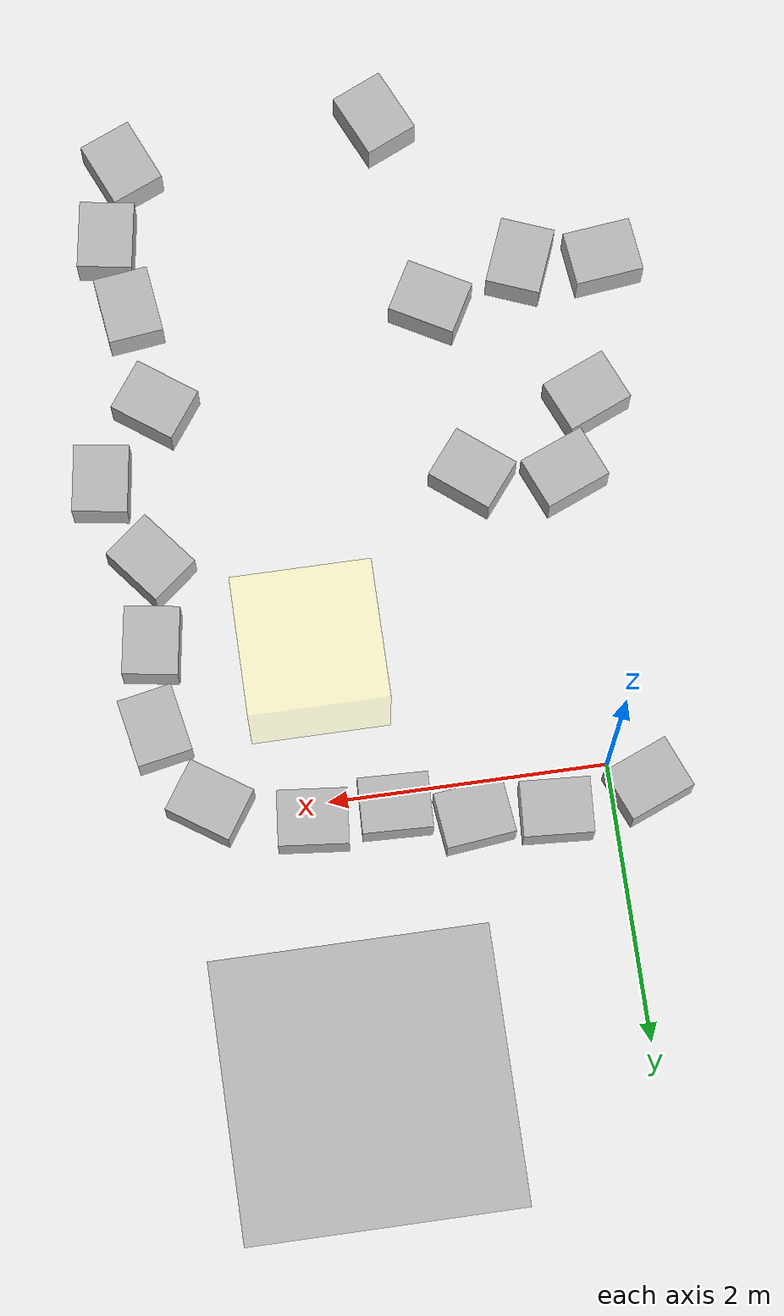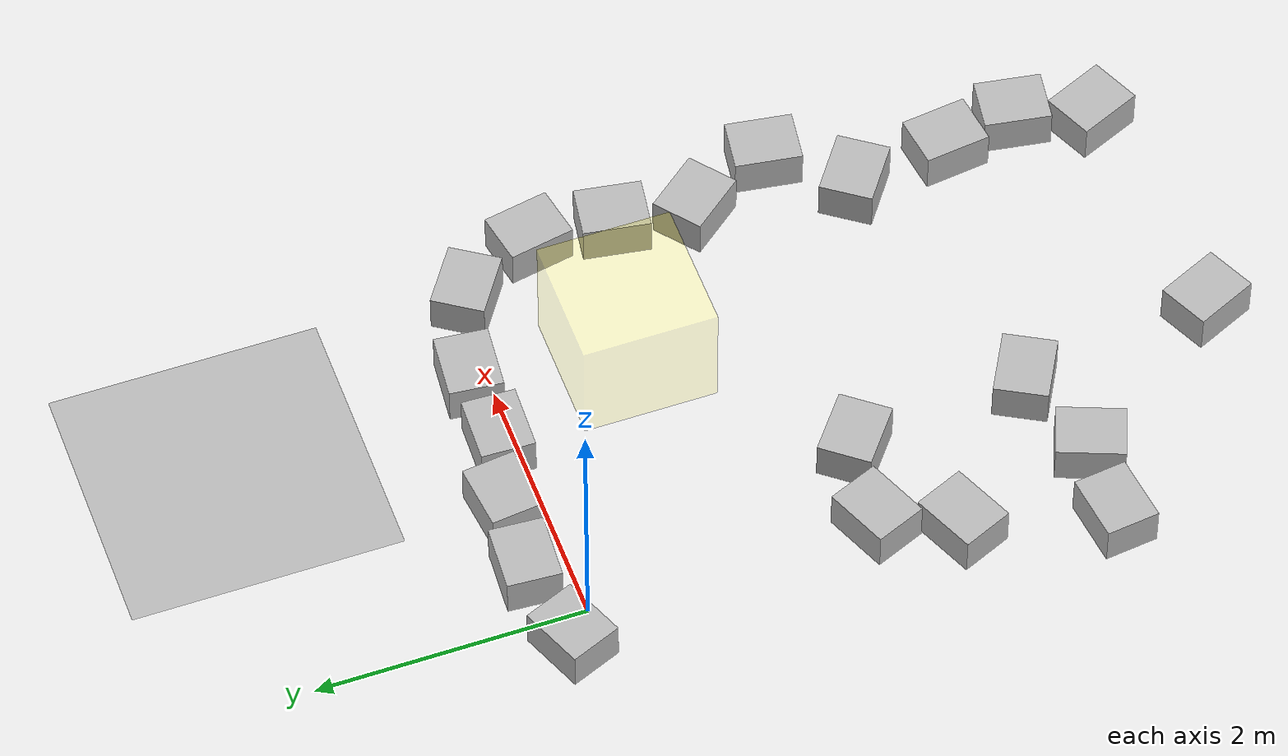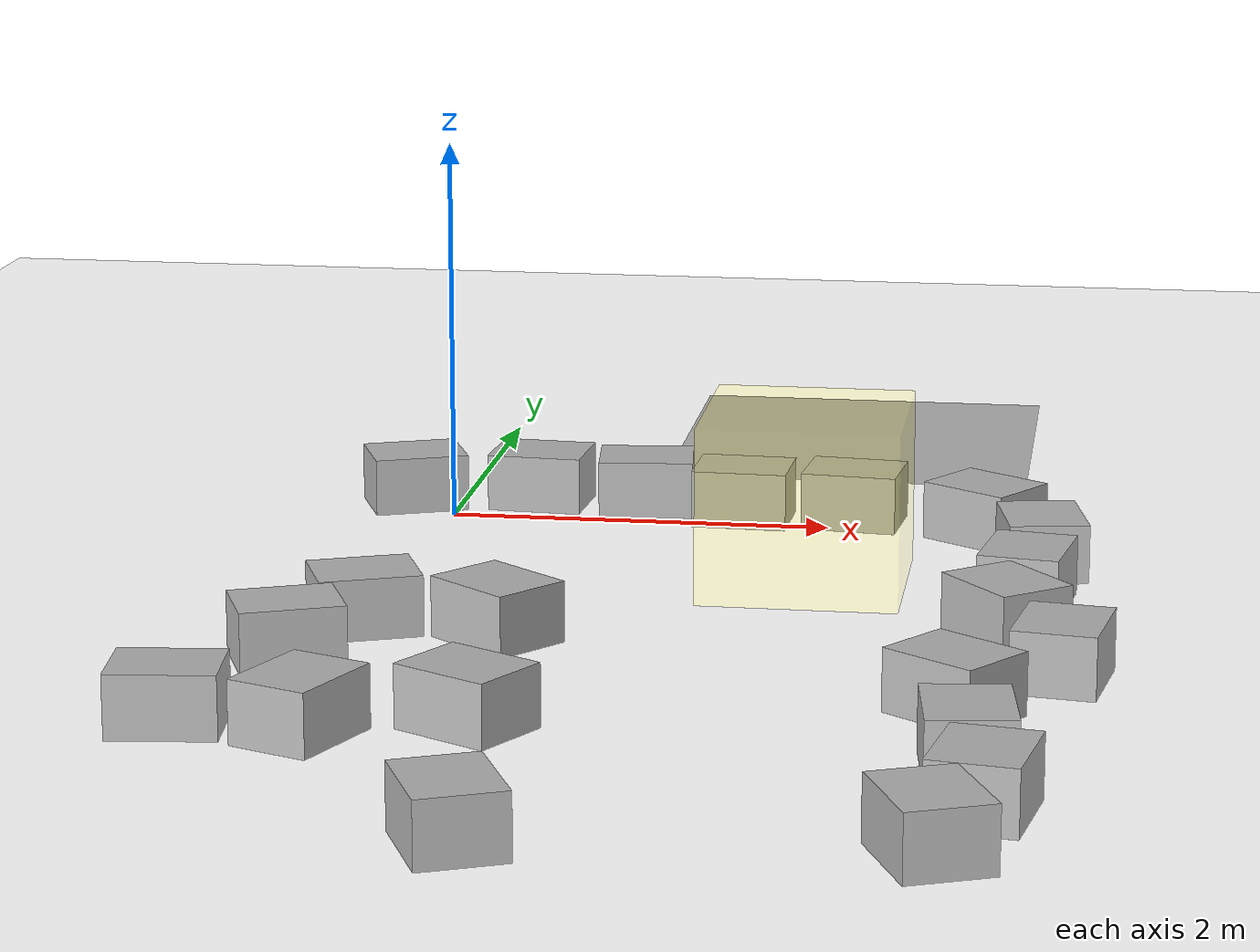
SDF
<sdf version="1.6">
 <world name="default">
  <model name="ground_plane">
   <static>1</static>
   <link name="link">
    <collision name="collision">
     <geometry><plane><normal>0 0 1</normal><size>100 100</size></plane></geometry>
     <surface><friction><ode><mu>100</mu><mu2>50</mu2></ode></friction></surface>
    </collision>
    <visual name="visual">
     <cast_shadows>0</cast_shadows>
     <geometry><plane><normal>0 0 1</normal><size>100 100</size></plane></geometry>
     <material>
      <script><uri>file://media/materials/scripts/gazebo.material</uri><name>Gazebo/Grey</name></script>
     </material>
    </visual>
   </link>
  </model>
  <model name="checkerboard_plane_clone_clone">
   <static>1</static>
   <link name="link">
    <visual name="visual">
     <geometry><mesh><uri>model://checkerboard_plane/meshes/checkerboard_plane.dae</uri></mesh></geometry>
    </visual>
   </link>
   <pose>2.00075 2.00686 0.001 0 -0 0</pose>
  </model>
  <model name="RegionEventBox">
   <static>1</static>
   <pose>1.98392 -1.00365 0 0 -0 0</pose>
   <link name="link">
    <visual name="visual">
     <transparency>0.75</transparency>
     <geometry><box><size>1 1 1.75</size></box></geometry>
     <material>
      <script><uri>file://media/materials/scripts/gazebo.material</uri><name>Gazebo/Yellow</name></script>
     </material>
    </visual>
   </link>
   <plugin name="region_event_box" filename="libRegionEventBoxPlugin.so">
    <event><name>model_in_region_event_box</name><type>inclusion</type><active>1</active></event>
   </plugin>
  </model>
  <model name="cardboard_box_clone_clone_clone_clone_0_clone_clone_clone_0_clone_1">
   <link name="link">
    <inertial>
     <mass>2</mass>
     <inertia>
      <ixx>0.0416667</ixx>
      <ixy>0</ixy>
      <ixz>0</ixz>
      <iyy>0.0566667</iyy>
      <iyz>0</iyz>
      <izz>0.0683333</izz>
     </inertia>
    </inertial>
    <visual name="visual">
     <pose>0 0 -0.15 0 -0 0</pose>
     <geometry>
      <mesh><uri>model://cardboard_box/meshes/cardboard_box.dae</uri><scale>1.25932 1.00745 0.755591</scale></mesh>
     </geometry>
    </visual>
    <collision name="collision">
     <geometry><box><size>0.5 0.4 0.3</size></box></geometry>
     <surface>
      <friction>
       <ode><mu>1</mu><mu2>1</mu2><fdir1>0 0 0</fdir1><slip1>0</slip1><slip2>0</slip2></ode>
       <torsional>
        <coefficient>1</coefficient>
        <patch_radius>0</patch_radius>
        <surface_radius>0</surface_radius>
        <use_patch_radius>1</use_patch_radius>
        <ode><slip>0</slip></ode>
       </torsional>
      </friction>
      <bounce><restitution_coefficient>0</restitution_coefficient><threshold>1e+06</threshold></bounce>
      <contact>
       <collide_without_contact>0</collide_without_contact>
       <collide_without_contact_bitmask>1</collide_without_contact_bitmask>
       <collide_bitmask>1</collide_bitmask>
       <ode>
        <soft_cfm>0</soft_cfm>
        <soft_erp>0.2</soft_erp>
        <kp>1e+07</kp>
        <kd>1</kd>
        <max_vel>0.1</max_vel>
        <min_depth>0.001</min_depth>
       </ode>
       <bullet>
        <split_impulse>1</split_impulse>
        <split_impulse_penetration_threshold>-0.01</split_impulse_penetration_threshold>
        <soft_cfm>0</soft_cfm>
        <soft_erp>0.2</soft_erp>
        <kp>1e+07</kp>
        <kd>1</kd>
       </bullet>
      </contact>
     </surface>
    </collision>
   </link>
   <static>1</static>
   <pose>-0.24972 0.197392 0.15 0 0 -2.75626</pose>
  </model>
  <model name="cardboard_box_clone_clone_clone_clone_0_clone_clone_clone_0_clone_2">
   <link name="link">
    <inertial>
     <mass>2</mass>
     <inertia>
      <ixx>0.0416667</ixx>
      <ixy>0</ixy>
      <ixz>0</ixz>
      <iyy>0.0566667</iyy>
      <iyz>0</iyz>
      <izz>0.0683333</izz>
     </inertia>
    </inertial>
    <visual name="visual">
     <pose>0 0 -0.15 0 -0 0</pose>
     <geometry>
      <mesh><uri>model://cardboard_box/meshes/cardboard_box.dae</uri><scale>1.25932 1.00745 0.755591</scale></mesh>
     </geometry>
    </visual>
    <collision name="collision">
     <geometry><box><size>0.5 0.4 0.3</size></box></geometry>
     <surface>
      <friction>
       <ode><mu>1</mu><mu2>1</mu2><fdir1>0 0 0</fdir1><slip1>0</slip1><slip2>0</slip2></ode>
       <torsional>
        <coefficient>1</coefficient>
        <patch_radius>0</patch_radius>
        <surface_radius>0</surface_radius>
        <use_patch_radius>1</use_patch_radius>
        <ode><slip>0</slip></ode>
       </torsional>
      </friction>
      <bounce><restitution_coefficient>0</restitution_coefficient><threshold>1e+06</threshold></bounce>
      <contact>
       <collide_without_contact>0</collide_without_contact>
       <collide_without_contact_bitmask>1</collide_without_contact_bitmask>
       <collide_bitmask>1</collide_bitmask>
       <ode>
        <soft_cfm>0</soft_cfm>
        <soft_erp>0.2</soft_erp>
        <kp>1e+07</kp>
        <kd>1</kd>
        <max_vel>0.1</max_vel>
        <min_depth>0.001</min_depth>
       </ode>
       <bullet>
        <split_impulse>1</split_impulse>
        <split_impulse_penetration_threshold>-0.01</split_impulse_penetration_threshold>
        <soft_cfm>0</soft_cfm>
        <soft_erp>0.2</soft_erp>
        <kp>1e+07</kp>
        <kd>1</kd>
       </bullet>
      </contact>
     </surface>
    </collision>
   </link>
   <static>1</static>
   <pose>0.422178 0.309321 0.15 0 -0 3.07826</pose>
  </model>
  <model name="cardboard_box_clone_clone_clone_clone_0_clone_clone_clone_0_clone_3">
   <link name="link">
    <inertial>
     <mass>2</mass>
     <inertia>
      <ixx>0.0416667</ixx>
      <ixy>0</ixy>
      <ixz>0</ixz>
      <iyy>0.0566667</iyy>
      <iyz>0</iyz>
      <izz>0.0683333</izz>
     </inertia>
    </inertial>
    <visual name="visual">
     <pose>0 0 -0.15 0 -0 0</pose>
     <geometry>
      <mesh><uri>model://cardboard_box/meshes/cardboard_box.dae</uri><scale>1.25932 1.00745 0.755591</scale></mesh>
     </geometry>
    </visual>
    <collision name="collision">
     <geometry><box><size>0.5 0.4 0.3</size></box></geometry>
     <surface>
      <friction>
       <ode><mu>1</mu><mu2>1</mu2><fdir1>0 0 0</fdir1><slip1>0</slip1><slip2>0</slip2></ode>
       <torsional>
        <coefficient>1</coefficient>
        <patch_radius>0</patch_radius>
        <surface_radius>0</surface_radius>
        <use_patch_radius>1</use_patch_radius>
        <ode><slip>0</slip></ode>
       </torsional>
      </friction>
      <bounce><restitution_coefficient>0</restitution_coefficient><threshold>1e+06</threshold></bounce>
      <contact>
       <collide_without_contact>0</collide_without_contact>
       <collide_without_contact_bitmask>1</collide_without_contact_bitmask>
       <collide_bitmask>1</collide_bitmask>
       <ode>
        <soft_cfm>0</soft_cfm>
        <soft_erp>0.2</soft_erp>
        <kp>1e+07</kp>
        <kd>1</kd>
        <max_vel>0.1</max_vel>
        <min_depth>0.001</min_depth>
       </ode>
       <bullet>
        <split_impulse>1</split_impulse>
        <split_impulse_penetration_threshold>-0.01</split_impulse_penetration_threshold>
        <soft_cfm>0</soft_cfm>
        <soft_erp>0.2</soft_erp>
        <kp>1e+07</kp>
        <kd>1</kd>
       </bullet>
      </contact>
     </surface>
    </collision>
   </link>
   <static>1</static>
   <pose>0.999361 0.271245 0.15 0 0 -3.0301</pose>
  </model>
  <model name="cardboard_box_clone_clone_clone_clone_0_clone_clone_clone_0_clone_4">
   <link name="link">
    <inertial>
     <mass>2</mass>
     <inertia>
      <ixx>0.0416667</ixx>
      <ixy>0</ixy>
      <ixz>0</ixz>
      <iyy>0.0566667</iyy>
      <iyz>0</iyz>
      <izz>0.0683333</izz>
     </inertia>
    </inertial>
    <visual name="visual">
     <pose>0 0 -0.15 0 -0 0</pose>
     <geometry>
      <mesh><uri>model://cardboard_box/meshes/cardboard_box.dae</uri><scale>1.25932 1.00745 0.755591</scale></mesh>
     </geometry>
    </visual>
    <collision name="collision">
     <geometry><box><size>0.5 0.4 0.3</size></box></geometry>
     <surface>
      <friction>
       <ode><mu>1</mu><mu2>1</mu2><fdir1>0 0 0</fdir1><slip1>0</slip1><slip2>0</slip2></ode>
       <torsional>
        <coefficient>1</coefficient>
        <patch_radius>0</patch_radius>
        <surface_radius>0</surface_radius>
        <use_patch_radius>1</use_patch_radius>
        <ode><slip>0</slip></ode>
       </torsional>
      </friction>
      <bounce><restitution_coefficient>0</restitution_coefficient><threshold>1e+06</threshold></bounce>
      <contact>
       <collide_without_contact>0</collide_without_contact>
       <collide_without_contact_bitmask>1</collide_without_contact_bitmask>
       <collide_bitmask>1</collide_bitmask>
       <ode>
        <soft_cfm>0</soft_cfm>
        <soft_erp>0.2</soft_erp>
        <kp>1e+07</kp>
        <kd>1</kd>
        <max_vel>0.1</max_vel>
        <min_depth>0.001</min_depth>
       </ode>
       <bullet>
        <split_impulse>1</split_impulse>
        <split_impulse_penetration_threshold>-0.01</split_impulse_penetration_threshold>
        <soft_cfm>0</soft_cfm>
        <soft_erp>0.2</soft_erp>
        <kp>1e+07</kp>
        <kd>1</kd>
       </bullet>
      </contact>
     </surface>
    </collision>
   </link>
   <static>1</static>
   <pose>1.54115 0.121129 0.15 0 -0 3.10477</pose>
  </model>
  <model name="cardboard_box_clone_clone_clone_clone_0_clone_clone_clone_0_clone_5">
   <link name="link">
    <inertial>
     <mass>2</mass>
     <inertia>
      <ixx>0.0416667</ixx>
      <ixy>0</ixy>
      <ixz>0</ixz>
      <iyy>0.0566667</iyy>
      <iyz>0</iyz>
      <izz>0.0683333</izz>
     </inertia>
    </inertial>
    <visual name="visual">
     <pose>0 0 -0.15 0 -0 0</pose>
     <geometry>
      <mesh><uri>model://cardboard_box/meshes/cardboard_box.dae</uri><scale>1.25932 1.00745 0.755591</scale></mesh>
     </geometry>
    </visual>
    <collision name="collision">
     <geometry><box><size>0.5 0.4 0.3</size></box></geometry>
     <surface>
      <friction>
       <ode><mu>1</mu><mu2>1</mu2><fdir1>0 0 0</fdir1><slip1>0</slip1><slip2>0</slip2></ode>
       <torsional>
        <coefficient>1</coefficient>
        <patch_radius>0</patch_radius>
        <surface_radius>0</surface_radius>
        <use_patch_radius>1</use_patch_radius>
        <ode><slip>0</slip></ode>
       </torsional>
      </friction>
      <bounce><restitution_coefficient>0</restitution_coefficient><threshold>1e+06</threshold></bounce>
      <contact>
       <collide_without_contact>0</collide_without_contact>
       <collide_without_contact_bitmask>1</collide_without_contact_bitmask>
       <collide_bitmask>1</collide_bitmask>
       <ode>
        <soft_cfm>0</soft_cfm>
        <soft_erp>0.2</soft_erp>
        <kp>1e+07</kp>
        <kd>1</kd>
        <max_vel>0.1</max_vel>
        <min_depth>0.001</min_depth>
       </ode>
       <bullet>
        <split_impulse>1</split_impulse>
        <split_impulse_penetration_threshold>-0.01</split_impulse_penetration_threshold>
        <soft_cfm>0</soft_cfm>
        <soft_erp>0.2</soft_erp>
        <kp>1e+07</kp>
        <kd>1</kd>
       </bullet>
      </contact>
     </surface>
    </collision>
   </link>
   <static>1</static>
   <pose>2.12867 0.141772 0.15 0 -0 3.044</pose>
  </model>
  <model name="cardboard_box_clone_clone_clone_clone_0_clone_clone_clone_0_clone_6">
   <link name="link">
    <inertial>
     <mass>2</mass>
     <inertia>
      <ixx>0.0416667</ixx>
      <ixy>0</ixy>
      <ixz>0</ixz>
      <iyy>0.0566667</iyy>
      <iyz>0</iyz>
      <izz>0.0683333</izz>
     </inertia>
    </inertial>
    <visual name="visual">
     <pose>0 0 -0.15 0 -0 0</pose>
     <geometry>
      <mesh><uri>model://cardboard_box/meshes/cardboard_box.dae</uri><scale>1.25932 1.00745 0.755591</scale></mesh>
     </geometry>
    </visual>
    <collision name="collision">
     <geometry><box><size>0.5 0.4 0.3</size></box></geometry>
     <surface>
      <friction>
       <ode><mu>1</mu><mu2>1</mu2><fdir1>0 0 0</fdir1><slip1>0</slip1><slip2>0</slip2></ode>
       <torsional>
        <coefficient>1</coefficient>
        <patch_radius>0</patch_radius>
        <surface_radius>0</surface_radius>
        <use_patch_radius>1</use_patch_radius>
        <ode><slip>0</slip></ode>
       </torsional>
      </friction>
      <bounce><restitution_coefficient>0</restitution_coefficient><threshold>1e+06</threshold></bounce>
      <contact>
       <collide_without_contact>0</collide_without_contact>
       <collide_without_contact_bitmask>1</collide_without_contact_bitmask>
       <collide_bitmask>1</collide_bitmask>
       <ode>
        <soft_cfm>0</soft_cfm>
        <soft_erp>0.2</soft_erp>
        <kp>1e+07</kp>
        <kd>1</kd>
        <max_vel>0.1</max_vel>
        <min_depth>0.001</min_depth>
       </ode>
       <bullet>
        <split_impulse>1</split_impulse>
        <split_impulse_penetration_threshold>-0.01</split_impulse_penetration_threshold>
        <soft_cfm>0</soft_cfm>
        <soft_erp>0.2</soft_erp>
        <kp>1e+07</kp>
        <kd>1</kd>
       </bullet>
      </contact>
     </surface>
    </collision>
   </link>
   <static>1</static>
   <pose>2.82942 -0.08159 0.15 0 -0 2.54743</pose>
  </model>
  <model name="cardboard_box_clone_clone_clone_clone_0_clone_clone_clone_0_clone_7">
   <link name="link">
    <inertial>
     <mass>2</mass>
     <inertia>
      <ixx>0.0416667</ixx>
      <ixy>0</ixy>
      <ixz>0</ixz>
      <iyy>0.0566667</iyy>
      <iyz>0</iyz>
      <izz>0.0683333</izz>
     </inertia>
    </inertial>
    <visual name="visual">
     <pose>0 0 -0.15 0 -0 0</pose>
     <geometry>
      <mesh><uri>model://cardboard_box/meshes/cardboard_box.dae</uri><scale>1.25932 1.00745 0.755591</scale></mesh>
     </geometry>
    </visual>
    <collision name="collision">
     <geometry><box><size>0.5 0.4 0.3</size></box></geometry>
     <surface>
      <friction>
       <ode><mu>1</mu><mu2>1</mu2><fdir1>0 0 0</fdir1><slip1>0</slip1><slip2>0</slip2></ode>
       <torsional>
        <coefficient>1</coefficient>
        <patch_radius>0</patch_radius>
        <surface_radius>0</surface_radius>
        <use_patch_radius>1</use_patch_radius>
        <ode><slip>0</slip></ode>
       </torsional>
      </friction>
      <bounce><restitution_coefficient>0</restitution_coefficient><threshold>1e+06</threshold></bounce>
      <contact>
       <collide_without_contact>0</collide_without_contact>
       <collide_without_contact_bitmask>1</collide_without_contact_bitmask>
       <collide_bitmask>1</collide_bitmask>
       <ode>
        <soft_cfm>0</soft_cfm>
        <soft_erp>0.2</soft_erp>
        <kp>1e+07</kp>
        <kd>1</kd>
        <max_vel>0.1</max_vel>
        <min_depth>0.001</min_depth>
       </ode>
       <bullet>
        <split_impulse>1</split_impulse>
        <split_impulse_penetration_threshold>-0.01</split_impulse_penetration_threshold>
        <soft_cfm>0</soft_cfm>
        <soft_erp>0.2</soft_erp>
        <kp>1e+07</kp>
        <kd>1</kd>
       </bullet>
      </contact>
     </surface>
    </collision>
   </link>
   <static>1</static>
   <pose>3.14465 -0.664614 0.15 0 -0 1.75678</pose>
  </model>
  <model name="cardboard_box_clone_clone_clone_clone_0_clone_clone_clone_0_clone_8">
   <link name="link">
    <inertial>
     <mass>2</mass>
     <inertia>
      <ixx>0.0416667</ixx>
      <ixy>0</ixy>
      <ixz>0</ixz>
      <iyy>0.0566667</iyy>
      <iyz>0</iyz>
      <izz>0.0683333</izz>
     </inertia>
    </inertial>
    <visual name="visual">
     <pose>0 0 -0.15 0 -0 0</pose>
     <geometry>
      <mesh><uri>model://cardboard_box/meshes/cardboard_box.dae</uri><scale>1.25932 1.00745 0.755591</scale></mesh>
     </geometry>
    </visual>
    <collision name="collision">
     <geometry><box><size>0.5 0.4 0.3</size></box></geometry>
     <surface>
      <friction>
       <ode><mu>1</mu><mu2>1</mu2><fdir1>0 0 0</fdir1><slip1>0</slip1><slip2>0</slip2></ode>
       <torsional>
        <coefficient>1</coefficient>
        <patch_radius>0</patch_radius>
        <surface_radius>0</surface_radius>
        <use_patch_radius>1</use_patch_radius>
        <ode><slip>0</slip></ode>
       </torsional>
      </friction>
      <bounce><restitution_coefficient>0</restitution_coefficient><threshold>1e+06</threshold></bounce>
      <contact>
       <collide_without_contact>0</collide_without_contact>
       <collide_without_contact_bitmask>1</collide_without_contact_bitmask>
       <collide_bitmask>1</collide_bitmask>
       <ode>
        <soft_cfm>0</soft_cfm>
        <soft_erp>0.2</soft_erp>
        <kp>1e+07</kp>
        <kd>1</kd>
        <max_vel>0.1</max_vel>
        <min_depth>0.001</min_depth>
       </ode>
       <bullet>
        <split_impulse>1</split_impulse>
        <split_impulse_penetration_threshold>-0.01</split_impulse_penetration_threshold>
        <soft_cfm>0</soft_cfm>
        <soft_erp>0.2</soft_erp>
        <kp>1e+07</kp>
        <kd>1</kd>
       </bullet>
      </contact>
     </surface>
    </collision>
   </link>
   <static>1</static>
   <pose>3.0944 -1.28365 0.15 0 -0 1.41338</pose>
  </model>
  <model name="cardboard_box_clone_clone_clone_clone_0_clone_clone_clone_0_clone_9">
   <link name="link">
    <inertial>
     <mass>2</mass>
     <inertia>
      <ixx>0.0416667</ixx>
      <ixy>0</ixy>
      <ixz>0</ixz>
      <iyy>0.0566667</iyy>
      <iyz>0</iyz>
      <izz>0.0683333</izz>
     </inertia>
    </inertial>
    <visual name="visual">
     <pose>0 0 -0.15 0 -0 0</pose>
     <geometry>
      <mesh><uri>model://cardboard_box/meshes/cardboard_box.dae</uri><scale>1.25932 1.00745 0.755591</scale></mesh>
     </geometry>
    </visual>
    <collision name="collision">
     <geometry><box><size>0.5 0.4 0.3</size></box></geometry>
     <surface>
      <friction>
       <ode><mu>1</mu><mu2>1</mu2><fdir1>0 0 0</fdir1><slip1>0</slip1><slip2>0</slip2></ode>
       <torsional>
        <coefficient>1</coefficient>
        <patch_radius>0</patch_radius>
        <surface_radius>0</surface_radius>
        <use_patch_radius>1</use_patch_radius>
        <ode><slip>0</slip></ode>
       </torsional>
      </friction>
      <bounce><restitution_coefficient>0</restitution_coefficient><threshold>1e+06</threshold></bounce>
      <contact>
       <collide_without_contact>0</collide_without_contact>
       <collide_without_contact_bitmask>1</collide_without_contact_bitmask>
       <collide_bitmask>1</collide_bitmask>
       <ode>
        <soft_cfm>0</soft_cfm>
        <soft_erp>0.2</soft_erp>
        <kp>1e+07</kp>
        <kd>1</kd>
        <max_vel>0.1</max_vel>
        <min_depth>0.001</min_depth>
       </ode>
       <bullet>
        <split_impulse>1</split_impulse>
        <split_impulse_penetration_threshold>-0.01</split_impulse_penetration_threshold>
        <soft_cfm>0</soft_cfm>
        <soft_erp>0.2</soft_erp>
        <kp>1e+07</kp>
        <kd>1</kd>
       </bullet>
      </contact>
     </surface>
    </collision>
   </link>
   <static>1</static>
   <pose>3.02239 -1.89125 0.15 0 -0 2.24391</pose>
  </model>
  <model name="cardboard_box_clone_clone_clone_clone_0_clone_clone_clone_0_clone_10">
   <link name="link">
    <inertial>
     <mass>2</mass>
     <inertia>
      <ixx>0.0416667</ixx>
      <ixy>0</ixy>
      <ixz>0</ixz>
      <iyy>0.0566667</iyy>
      <iyz>0</iyz>
      <izz>0.0683333</izz>
     </inertia>
    </inertial>
    <visual name="visual">
     <pose>0 0 -0.15 0 -0 0</pose>
     <geometry>
      <mesh><uri>model://cardboard_box/meshes/cardboard_box.dae</uri><scale>1.25932 1.00745 0.755591</scale></mesh>
     </geometry>
    </visual>
    <collision name="collision">
     <geometry><box><size>0.5 0.4 0.3</size></box></geometry>
     <surface>
      <friction>
       <ode><mu>1</mu><mu2>1</mu2><fdir1>0 0 0</fdir1><slip1>0</slip1><slip2>0</slip2></ode>
       <torsional>
        <coefficient>1</coefficient>
        <patch_radius>0</patch_radius>
        <surface_radius>0</surface_radius>
        <use_patch_radius>1</use_patch_radius>
        <ode><slip>0</slip></ode>
       </torsional>
      </friction>
      <bounce><restitution_coefficient>0</restitution_coefficient><threshold>1e+06</threshold></bounce>
      <contact>
       <collide_without_contact>0</collide_without_contact>
       <collide_without_contact_bitmask>1</collide_without_contact_bitmask>
       <collide_bitmask>1</collide_bitmask>
       <ode>
        <soft_cfm>0</soft_cfm>
        <soft_erp>0.2</soft_erp>
        <kp>1e+07</kp>
        <kd>1</kd>
        <max_vel>0.1</max_vel>
        <min_depth>0.001</min_depth>
       </ode>
       <bullet>
        <split_impulse>1</split_impulse>
        <split_impulse_penetration_threshold>-0.01</split_impulse_penetration_threshold>
        <soft_cfm>0</soft_cfm>
        <soft_erp>0.2</soft_erp>
        <kp>1e+07</kp>
        <kd>1</kd>
       </bullet>
      </contact>
     </surface>
    </collision>
   </link>
   <static>1</static>
   <pose>3.30498 -2.5257 0.15 0 -0 1.4221</pose>
  </model>
  <model name="cardboard_box_clone_clone_clone_clone_0_clone_clone_clone_0_clone_11">
   <link name="link">
    <inertial>
     <mass>2</mass>
     <inertia>
      <ixx>0.0416667</ixx>
      <ixy>0</ixy>
      <ixz>0</ixz>
      <iyy>0.0566667</iyy>
      <iyz>0</iyz>
      <izz>0.0683333</izz>
     </inertia>
    </inertial>
    <visual name="visual">
     <pose>0 0 -0.15 0 -0 0</pose>
     <geometry>
      <mesh><uri>model://cardboard_box/meshes/cardboard_box.dae</uri><scale>1.25932 1.00745 0.755591</scale></mesh>
     </geometry>
    </visual>
    <collision name="collision">
     <geometry><box><size>0.5 0.4 0.3</size></box></geometry>
     <surface>
      <friction>
       <ode><mu>1</mu><mu2>1</mu2><fdir1>0 0 0</fdir1><slip1>0</slip1><slip2>0</slip2></ode>
       <torsional>
        <coefficient>1</coefficient>
        <patch_radius>0</patch_radius>
        <surface_radius>0</surface_radius>
        <use_patch_radius>1</use_patch_radius>
        <ode><slip>0</slip></ode>
       </torsional>
      </friction>
      <bounce><restitution_coefficient>0</restitution_coefficient><threshold>1e+06</threshold></bounce>
      <contact>
       <collide_without_contact>0</collide_without_contact>
       <collide_without_contact_bitmask>1</collide_without_contact_bitmask>
       <collide_bitmask>1</collide_bitmask>
       <ode>
        <soft_cfm>0</soft_cfm>
        <soft_erp>0.2</soft_erp>
        <kp>1e+07</kp>
        <kd>1</kd>
        <max_vel>0.1</max_vel>
        <min_depth>0.001</min_depth>
       </ode>
       <bullet>
        <split_impulse>1</split_impulse>
        <split_impulse_penetration_threshold>-0.01</split_impulse_penetration_threshold>
        <soft_cfm>0</soft_cfm>
        <soft_erp>0.2</soft_erp>
        <kp>1e+07</kp>
        <kd>1</kd>
       </bullet>
      </contact>
     </surface>
    </collision>
   </link>
   <static>1</static>
   <pose>2.8473 -3.0614 0.15 0 0 -0.629941</pose>
  </model>
  <model name="cardboard_box_clone_clone_clone_clone_0_clone_clone_clone_0_clone_11_clone_clone">
   <link name="link">
    <inertial>
     <mass>2</mass>
     <inertia>
      <ixx>0.0416667</ixx>
      <ixy>0</ixy>
      <ixz>0</ixz>
      <iyy>0.0566667</iyy>
      <iyz>0</iyz>
      <izz>0.0683333</izz>
     </inertia>
    </inertial>
    <visual name="visual">
     <pose>0 0 -0.15 0 -0 0</pose>
     <geometry>
      <mesh><uri>model://cardboard_box/meshes/cardboard_box.dae</uri><scale>1.25932 1.00745 0.755591</scale></mesh>
     </geometry>
    </visual>
    <collision name="collision">
     <geometry><box><size>0.5 0.4 0.3</size></box></geometry>
     <surface>
      <friction>
       <ode><mu>1</mu><mu2>1</mu2><fdir1>0 0 0</fdir1><slip1>0</slip1><slip2>0</slip2></ode>
       <torsional>
        <coefficient>1</coefficient>
        <patch_radius>0</patch_radius>
        <surface_radius>0</surface_radius>
        <use_patch_radius>1</use_patch_radius>
        <ode><slip>0</slip></ode>
       </torsional>
      </friction>
      <bounce><restitution_coefficient>0</restitution_coefficient><threshold>1e+06</threshold></bounce>
      <contact>
       <collide_without_contact>0</collide_without_contact>
       <collide_without_contact_bitmask>1</collide_without_contact_bitmask>
       <collide_bitmask>1</collide_bitmask>
       <ode>
        <soft_cfm>0</soft_cfm>
        <soft_erp>0.2</soft_erp>
        <kp>1e+07</kp>
        <kd>1</kd>
        <max_vel>0.1</max_vel>
        <min_depth>0.001</min_depth>
       </ode>
       <bullet>
        <split_impulse>1</split_impulse>
        <split_impulse_penetration_threshold>-0.01</split_impulse_penetration_threshold>
        <soft_cfm>0</soft_cfm>
        <soft_erp>0.2</soft_erp>
        <kp>1e+07</kp>
        <kd>1</kd>
       </bullet>
      </contact>
     </surface>
    </collision>
   </link>
   <static>1</static>
   <pose>2.94828 -3.80625 0.15 0 0 -1.45029</pose>
  </model>
  <model name="cardboard_box_clone_clone_clone_clone_0_clone_clone_clone_0_clone_11_clone_clone_0">
   <link name="link">
    <inertial>
     <mass>2</mass>
     <inertia>
      <ixx>0.0416667</ixx>
      <ixy>0</ixy>
      <ixz>0</ixz>
      <iyy>0.0566667</iyy>
      <iyz>0</iyz>
      <izz>0.0683333</izz>
     </inertia>
    </inertial>
    <visual name="visual">
     <pose>0 0 -0.15 0 -0 0</pose>
     <geometry>
      <mesh><uri>model://cardboard_box/meshes/cardboard_box.dae</uri><scale>1.25932 1.00745 0.755591</scale></mesh>
     </geometry>
    </visual>
    <collision name="collision">
     <geometry><box><size>0.5 0.4 0.3</size></box></geometry>
     <surface>
      <friction>
       <ode><mu>1</mu><mu2>1</mu2><fdir1>0 0 0</fdir1><slip1>0</slip1><slip2>0</slip2></ode>
       <torsional>
        <coefficient>1</coefficient>
        <patch_radius>0</patch_radius>
        <surface_radius>0</surface_radius>
        <use_patch_radius>1</use_patch_radius>
        <ode><slip>0</slip></ode>
       </torsional>
      </friction>
      <bounce><restitution_coefficient>0</restitution_coefficient><threshold>1e+06</threshold></bounce>
      <contact>
       <collide_without_contact>0</collide_without_contact>
       <collide_without_contact_bitmask>1</collide_without_contact_bitmask>
       <collide_bitmask>1</collide_bitmask>
       <ode>
        <soft_cfm>0</soft_cfm>
        <soft_erp>0.2</soft_erp>
        <kp>1e+07</kp>
        <kd>1</kd>
        <max_vel>0.1</max_vel>
        <min_depth>0.001</min_depth>
       </ode>
       <bullet>
        <split_impulse>1</split_impulse>
        <split_impulse_penetration_threshold>-0.01</split_impulse_penetration_threshold>
        <soft_cfm>0</soft_cfm>
        <soft_erp>0.2</soft_erp>
        <kp>1e+07</kp>
        <kd>1</kd>
       </bullet>
      </contact>
     </surface>
    </collision>
   </link>
   <static>1</static>
   <pose>3.04439 -4.36758 0.15 0 0 -1.73089</pose>
  </model>
  <model name="cardboard_box_clone_clone_clone_clone_0_clone_clone_clone_0_clone_11_clone_clone_1">
   <link name="link">
    <inertial>
     <mass>2</mass>
     <inertia>
      <ixx>0.0416667</ixx>
      <ixy>0</ixy>
      <ixz>0</ixz>
      <iyy>0.0566667</iyy>
      <iyz>0</iyz>
      <izz>0.0683333</izz>
     </inertia>
    </inertial>
    <visual name="visual">
     <pose>0 0 -0.15 0 -0 0</pose>
     <geometry>
      <mesh><uri>model://cardboard_box/meshes/cardboard_box.dae</uri><scale>1.25932 1.00745 0.755591</scale></mesh>
     </geometry>
    </visual>
    <collision name="collision">
     <geometry><box><size>0.5 0.4 0.3</size></box></geometry>
     <surface>
      <friction>
       <ode><mu>1</mu><mu2>1</mu2><fdir1>0 0 0</fdir1><slip1>0</slip1><slip2>0</slip2></ode>
       <torsional>
        <coefficient>1</coefficient>
        <patch_radius>0</patch_radius>
        <surface_radius>0</surface_radius>
        <use_patch_radius>1</use_patch_radius>
        <ode><slip>0</slip></ode>
       </torsional>
      </friction>
      <bounce><restitution_coefficient>0</restitution_coefficient><threshold>1e+06</threshold></bounce>
      <contact>
       <collide_without_contact>0</collide_without_contact>
       <collide_without_contact_bitmask>1</collide_without_contact_bitmask>
       <collide_bitmask>1</collide_bitmask>
       <ode>
        <soft_cfm>0</soft_cfm>
        <soft_erp>0.2</soft_erp>
        <kp>1e+07</kp>
        <kd>1</kd>
        <max_vel>0.1</max_vel>
        <min_depth>0.001</min_depth>
       </ode>
       <bullet>
        <split_impulse>1</split_impulse>
        <split_impulse_penetration_threshold>-0.01</split_impulse_penetration_threshold>
        <soft_cfm>0</soft_cfm>
        <soft_erp>0.2</soft_erp>
        <kp>1e+07</kp>
        <kd>1</kd>
       </bullet>
      </contact>
     </surface>
    </collision>
   </link>
   <static>1</static>
   <pose>2.86346 -4.91531 0.15 0 0 -1.16671</pose>
  </model>
  <model name="cardboard_box_clone_clone_clone_clone_0_clone_clone_clone_0_clone_11_clone_clone_34">
   <link name="link">
    <inertial>
     <mass>2</mass>
     <inertia>
      <ixx>0.0416667</ixx>
      <ixy>0</ixy>
      <ixz>0</ixz>
      <iyy>0.0566667</iyy>
      <iyz>0</iyz>
      <izz>0.0683333</izz>
     </inertia>
    </inertial>
    <visual name="visual">
     <pose>0 0 -0.15 0 -0 0</pose>
     <geometry>
      <mesh><uri>model://cardboard_box/meshes/cardboard_box.dae</uri><scale>1.25932 1.00745 0.755591</scale></mesh>
     </geometry>
    </visual>
    <collision name="collision">
     <geometry><box><size>0.5 0.4 0.3</size></box></geometry>
     <surface>
      <friction>
       <ode><mu>1</mu><mu2>1</mu2><fdir1>0 0 0</fdir1><slip1>0</slip1><slip2>0</slip2></ode>
       <torsional>
        <coefficient>1</coefficient>
        <patch_radius>0</patch_radius>
        <surface_radius>0</surface_radius>
        <use_patch_radius>1</use_patch_radius>
        <ode><slip>0</slip></ode>
       </torsional>
      </friction>
      <bounce><restitution_coefficient>0</restitution_coefficient><threshold>1e+06</threshold></bounce>
      <contact>
       <collide_without_contact>0</collide_without_contact>
       <collide_without_contact_bitmask>1</collide_without_contact_bitmask>
       <collide_bitmask>1</collide_bitmask>
       <ode>
        <soft_cfm>0</soft_cfm>
        <soft_erp>0.2</soft_erp>
        <kp>1e+07</kp>
        <kd>1</kd>
        <max_vel>0.1</max_vel>
        <min_depth>0.001</min_depth>
       </ode>
       <bullet>
        <split_impulse>1</split_impulse>
        <split_impulse_penetration_threshold>-0.01</split_impulse_penetration_threshold>
        <soft_cfm>0</soft_cfm>
        <soft_erp>0.2</soft_erp>
        <kp>1e+07</kp>
        <kd>1</kd>
       </bullet>
      </contact>
     </surface>
    </collision>
   </link>
   <static>1</static>
   <pose>-0.014218 -2.14132 0.15 0 0 -2.75291</pose>
  </model>
  <model name="cardboard_box_clone_clone_clone_clone_0_clone_clone_clone_0_clone_11_clone_clone_35">
   <link name="link">
    <inertial>
     <mass>2</mass>
     <inertia>
      <ixx>0.0416667</ixx>
      <ixy>0</ixy>
      <ixz>0</ixz>
      <iyy>0.0566667</iyy>
      <iyz>0</iyz>
      <izz>0.0683333</izz>
     </inertia>
    </inertial>
    <visual name="visual">
     <pose>0 0 -0.15 0 -0 0</pose>
     <geometry>
      <mesh><uri>model://cardboard_box/meshes/cardboard_box.dae</uri><scale>1.25932 1.00745 0.755591</scale></mesh>
     </geometry>
    </visual>
    <collision name="collision">
     <geometry><box><size>0.5 0.4 0.3</size></box></geometry>
     <surface>
      <friction>
       <ode><mu>1</mu><mu2>1</mu2><fdir1>0 0 0</fdir1><slip1>0</slip1><slip2>0</slip2></ode>
       <torsional>
        <coefficient>1</coefficient>
        <patch_radius>0</patch_radius>
        <surface_radius>0</surface_radius>
        <use_patch_radius>1</use_patch_radius>
        <ode><slip>0</slip></ode>
       </torsional>
      </friction>
      <bounce><restitution_coefficient>0</restitution_coefficient><threshold>1e+06</threshold></bounce>
      <contact>
       <collide_without_contact>0</collide_without_contact>
       <collide_without_contact_bitmask>1</collide_without_contact_bitmask>
       <collide_bitmask>1</collide_bitmask>
       <ode>
        <soft_cfm>0</soft_cfm>
        <soft_erp>0.2</soft_erp>
        <kp>1e+07</kp>
        <kd>1</kd>
        <max_vel>0.1</max_vel>
        <min_depth>0.001</min_depth>
       </ode>
       <bullet>
        <split_impulse>1</split_impulse>
        <split_impulse_penetration_threshold>-0.01</split_impulse_penetration_threshold>
        <soft_cfm>0</soft_cfm>
        <soft_erp>0.2</soft_erp>
        <kp>1e+07</kp>
        <kd>1</kd>
       </bullet>
      </contact>
     </surface>
    </collision>
   </link>
   <static>1</static>
   <pose>0.645845 -2.22799 0.15 0 -0 2.46596</pose>
  </model>
  <model name="cardboard_box_clone_clone_clone_clone_0_clone_clone_clone_0_clone_11_clone_clone_36">
   <link name="link">
    <inertial>
     <mass>2</mass>
     <inertia>
      <ixx>0.0416667</ixx>
      <ixy>0</ixy>
      <ixz>0</ixz>
      <iyy>0.0566667</iyy>
      <iyz>0</iyz>
      <izz>0.0683333</izz>
     </inertia>
    </inertial>
    <visual name="visual">
     <pose>0 0 -0.15 0 -0 0</pose>
     <geometry>
      <mesh><uri>model://cardboard_box/meshes/cardboard_box.dae</uri><scale>1.25932 1.00745 0.755591</scale></mesh>
     </geometry>
    </visual>
    <collision name="collision">
     <geometry><box><size>0.5 0.4 0.3</size></box></geometry>
     <surface>
      <friction>
       <ode><mu>1</mu><mu2>1</mu2><fdir1>0 0 0</fdir1><slip1>0</slip1><slip2>0</slip2></ode>
       <torsional>
        <coefficient>1</coefficient>
        <patch_radius>0</patch_radius>
        <surface_radius>0</surface_radius>
        <use_patch_radius>1</use_patch_radius>
        <ode><slip>0</slip></ode>
       </torsional>
      </friction>
      <bounce><restitution_coefficient>0</restitution_coefficient><threshold>1e+06</threshold></bounce>
      <contact>
       <collide_without_contact>0</collide_without_contact>
       <collide_without_contact_bitmask>1</collide_without_contact_bitmask>
       <collide_bitmask>1</collide_bitmask>
       <ode>
        <soft_cfm>0</soft_cfm>
        <soft_erp>0.2</soft_erp>
        <kp>1e+07</kp>
        <kd>1</kd>
        <max_vel>0.1</max_vel>
        <min_depth>0.001</min_depth>
       </ode>
       <bullet>
        <split_impulse>1</split_impulse>
        <split_impulse_penetration_threshold>-0.01</split_impulse_penetration_threshold>
        <soft_cfm>0</soft_cfm>
        <soft_erp>0.2</soft_erp>
        <kp>1e+07</kp>
        <kd>1</kd>
       </bullet>
      </contact>
     </surface>
    </collision>
   </link>
   <static>1</static>
   <pose>-0.259813 -2.69344 0.15 0 0 -2.74151</pose>
  </model>
  <model name="cardboard_box_clone_clone_clone_clone_0_clone_clone_clone_0_clone_11_clone_clone_37">
   <link name="link">
    <inertial>
     <mass>2</mass>
     <inertia>
      <ixx>0.0416667</ixx>
      <ixy>0</ixy>
      <ixz>0</ixz>
      <iyy>0.0566667</iyy>
      <iyz>0</iyz>
      <izz>0.0683333</izz>
     </inertia>
    </inertial>
    <visual name="visual">
     <pose>0 0 -0.15 0 -0 0</pose>
     <geometry>
      <mesh><uri>model://cardboard_box/meshes/cardboard_box.dae</uri><scale>1.25932 1.00745 0.755591</scale></mesh>
     </geometry>
    </visual>
    <collision name="collision">
     <geometry><box><size>0.5 0.4 0.3</size></box></geometry>
     <surface>
      <friction>
       <ode><mu>1</mu><mu2>1</mu2><fdir1>0 0 0</fdir1><slip1>0</slip1><slip2>0</slip2></ode>
       <torsional>
        <coefficient>1</coefficient>
        <patch_radius>0</patch_radius>
        <surface_radius>0</surface_radius>
        <use_patch_radius>1</use_patch_radius>
        <ode><slip>0</slip></ode>
       </torsional>
      </friction>
      <bounce><restitution_coefficient>0</restitution_coefficient><threshold>1e+06</threshold></bounce>
      <contact>
       <collide_without_contact>0</collide_without_contact>
       <collide_without_contact_bitmask>1</collide_without_contact_bitmask>
       <collide_bitmask>1</collide_bitmask>
       <ode>
        <soft_cfm>0</soft_cfm>
        <soft_erp>0.2</soft_erp>
        <kp>1e+07</kp>
        <kd>1</kd>
        <max_vel>0.1</max_vel>
        <min_depth>0.001</min_depth>
       </ode>
       <bullet>
        <split_impulse>1</split_impulse>
        <split_impulse_penetration_threshold>-0.01</split_impulse_penetration_threshold>
        <soft_cfm>0</soft_cfm>
        <soft_erp>0.2</soft_erp>
        <kp>1e+07</kp>
        <kd>1</kd>
       </bullet>
      </contact>
     </surface>
    </collision>
   </link>
   <static>1</static>
   <pose>0.062687 -3.78468 0.15 0 0 -1.95166</pose>
  </model>
  <model name="cardboard_box_clone_clone_clone_clone_0_clone_clone_clone_0_clone_11_clone_clone_38">
   <link name="link">
    <inertial>
     <mass>2</mass>
     <inertia>
      <ixx>0.0416667</ixx>
      <ixy>0</ixy>
      <ixz>0</ixz>
      <iyy>0.0566667</iyy>
      <iyz>0</iyz>
      <izz>0.0683333</izz>
     </inertia>
    </inertial>
    <visual name="visual">
     <pose>0 0 -0.15 0 -0 0</pose>
     <geometry>
      <mesh><uri>model://cardboard_box/meshes/cardboard_box.dae</uri><scale>1.25932 1.00745 0.755591</scale></mesh>
     </geometry>
    </visual>
    <collision name="collision">
     <geometry><box><size>0.5 0.4 0.3</size></box></geometry>
     <surface>
      <friction>
       <ode><mu>1</mu><mu2>1</mu2><fdir1>0 0 0</fdir1><slip1>0</slip1><slip2>0</slip2></ode>
       <torsional>
        <coefficient>1</coefficient>
        <patch_radius>0</patch_radius>
        <surface_radius>0</surface_radius>
        <use_patch_radius>1</use_patch_radius>
        <ode><slip>0</slip></ode>
       </torsional>
      </friction>
      <bounce><restitution_coefficient>0</restitution_coefficient><threshold>1e+06</threshold></bounce>
      <contact>
       <collide_without_contact>0</collide_without_contact>
       <collide_without_contact_bitmask>1</collide_without_contact_bitmask>
       <collide_bitmask>1</collide_bitmask>
       <ode>
        <soft_cfm>0</soft_cfm>
        <soft_erp>0.2</soft_erp>
        <kp>1e+07</kp>
        <kd>1</kd>
        <max_vel>0.1</max_vel>
        <min_depth>0.001</min_depth>
       </ode>
       <bullet>
        <split_impulse>1</split_impulse>
        <split_impulse_penetration_threshold>-0.01</split_impulse_penetration_threshold>
        <soft_cfm>0</soft_cfm>
        <soft_erp>0.2</soft_erp>
        <kp>1e+07</kp>
        <kd>1</kd>
       </bullet>
      </contact>
     </surface>
    </collision>
   </link>
   <static>1</static>
   <pose>0.758058 -3.56398 0.15 0 0 -0.512217</pose>
  </model>
  <model name="cardboard_box_clone_clone_clone_clone_0_clone_clone_clone_0_clone_11_clone_clone_42">
   <link name="link">
    <inertial>
     <mass>2</mass>
     <inertia>
      <ixx>0.0416667</ixx>
      <ixy>0</ixy>
      <ixz>0</ixz>
      <iyy>0.0566667</iyy>
      <iyz>0</iyz>
      <izz>0.0683333</izz>
     </inertia>
    </inertial>
    <visual name="visual">
     <pose>0 0 -0.15 0 -0 0</pose>
     <geometry>
      <mesh><uri>model://cardboard_box/meshes/cardboard_box.dae</uri><scale>1.25932 1.00745 0.755591</scale></mesh>
     </geometry>
    </visual>
    <collision name="collision">
     <geometry><box><size>0.5 0.4 0.3</size></box></geometry>
     <surface>
      <friction>
       <ode><mu>1</mu><mu2>1</mu2><fdir1>0 0 0</fdir1><slip1>0</slip1><slip2>0</slip2></ode>
       <torsional>
        <coefficient>1</coefficient>
        <patch_radius>0</patch_radius>
        <surface_radius>0</surface_radius>
        <use_patch_radius>1</use_patch_radius>
        <ode><slip>0</slip></ode>
       </torsional>
      </friction>
      <bounce><restitution_coefficient>0</restitution_coefficient><threshold>1e+06</threshold></bounce>
      <contact>
       <collide_without_contact>0</collide_without_contact>
       <collide_without_contact_bitmask>1</collide_without_contact_bitmask>
       <collide_bitmask>1</collide_bitmask>
       <ode>
        <soft_cfm>0</soft_cfm>
        <soft_erp>0.2</soft_erp>
        <kp>1e+07</kp>
        <kd>1</kd>
        <max_vel>0.1</max_vel>
        <min_depth>0.001</min_depth>
       </ode>
       <bullet>
        <split_impulse>1</split_impulse>
        <split_impulse_penetration_threshold>-0.01</split_impulse_penetration_threshold>
        <soft_cfm>0</soft_cfm>
        <soft_erp>0.2</soft_erp>
        <kp>1e+07</kp>
        <kd>1</kd>
       </bullet>
      </contact>
     </surface>
    </collision>
   </link>
   <static>1</static>
   <pose>0.96634 -5.04101 0.15 0 -0 1.99331</pose>
  </model>
  <model name="cardboard_box_clone_clone_clone_clone_0_clone_clone_clone_0_clone_3_clone">
   <link name="link">
    <inertial>
     <mass>2</mass>
     <inertia>
      <ixx>0.0416667</ixx>
      <ixy>0</ixy>
      <ixz>0</ixz>
      <iyy>0.0566667</iyy>
      <iyz>0</iyz>
      <izz>0.0683333</izz>
     </inertia>
    </inertial>
    <visual name="visual">
     <pose>0 0 -0.15 0 -0 0</pose>
     <geometry>
      <mesh><uri>model://cardboard_box/meshes/cardboard_box.dae</uri><scale>1.25932 1.00745 0.755591</scale></mesh>
     </geometry>
    </visual>
    <collision name="collision">
     <geometry><box><size>0.5 0.4 0.3</size></box></geometry>
     <surface>
      <friction>
       <ode><mu>1</mu><mu2>1</mu2><fdir1>0 0 0</fdir1><slip1>0</slip1><slip2>0</slip2></ode>
       <torsional>
        <coefficient>1</coefficient>
        <patch_radius>0</patch_radius>
        <surface_radius>0</surface_radius>
        <use_patch_radius>1</use_patch_radius>
        <ode><slip>0</slip></ode>
       </torsional>
      </friction>
      <bounce><restitution_coefficient>0</restitution_coefficient><threshold>1e+06</threshold></bounce>
      <contact>
       <collide_without_contact>0</collide_without_contact>
       <collide_without_contact_bitmask>1</collide_without_contact_bitmask>
       <collide_bitmask>1</collide_bitmask>
       <ode>
        <soft_cfm>0</soft_cfm>
        <soft_erp>0.2</soft_erp>
        <kp>1e+07</kp>
        <kd>1</kd>
        <max_vel>0.1</max_vel>
        <min_depth>0.001</min_depth>
       </ode>
       <bullet>
        <split_impulse>1</split_impulse>
        <split_impulse_penetration_threshold>-0.01</split_impulse_penetration_threshold>
        <soft_cfm>0</soft_cfm>
        <soft_erp>0.2</soft_erp>
        <kp>1e+07</kp>
        <kd>1</kd>
       </bullet>
      </contact>
     </surface>
    </collision>
   </link>
   <static>1</static>
   <pose>-0.541786 -3.73228 0.15 0 0 -3.0301</pose>
  </model>
 </world>
</sdf>
